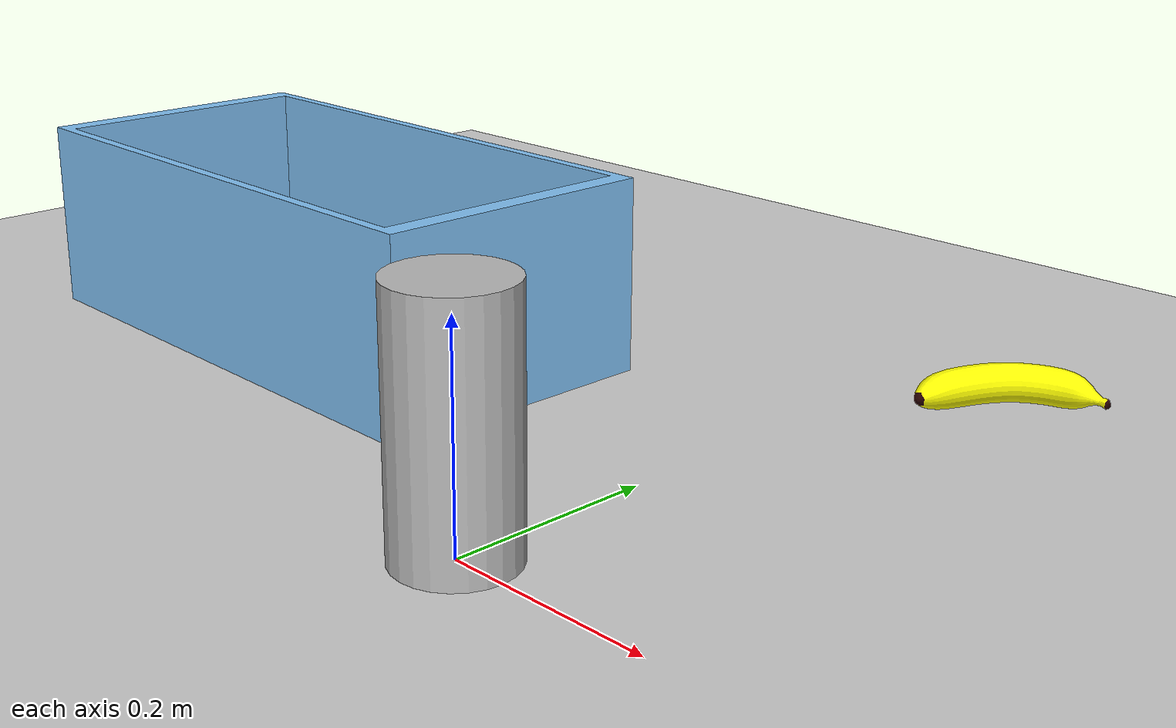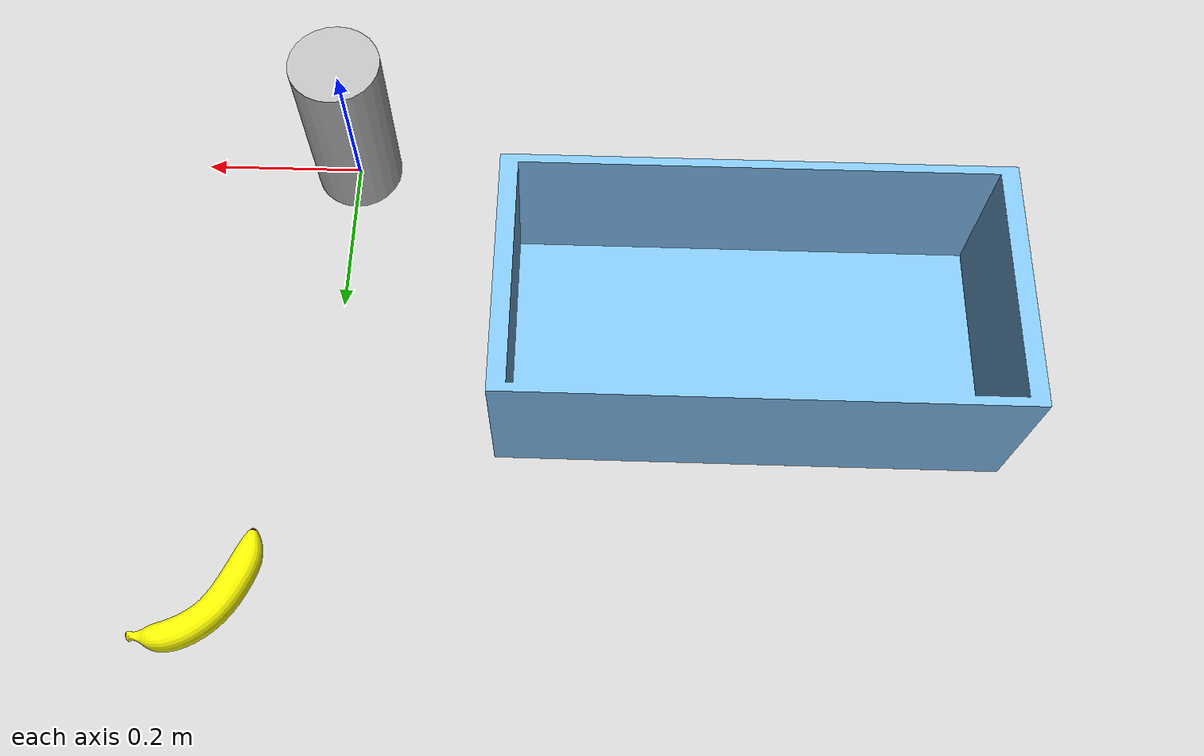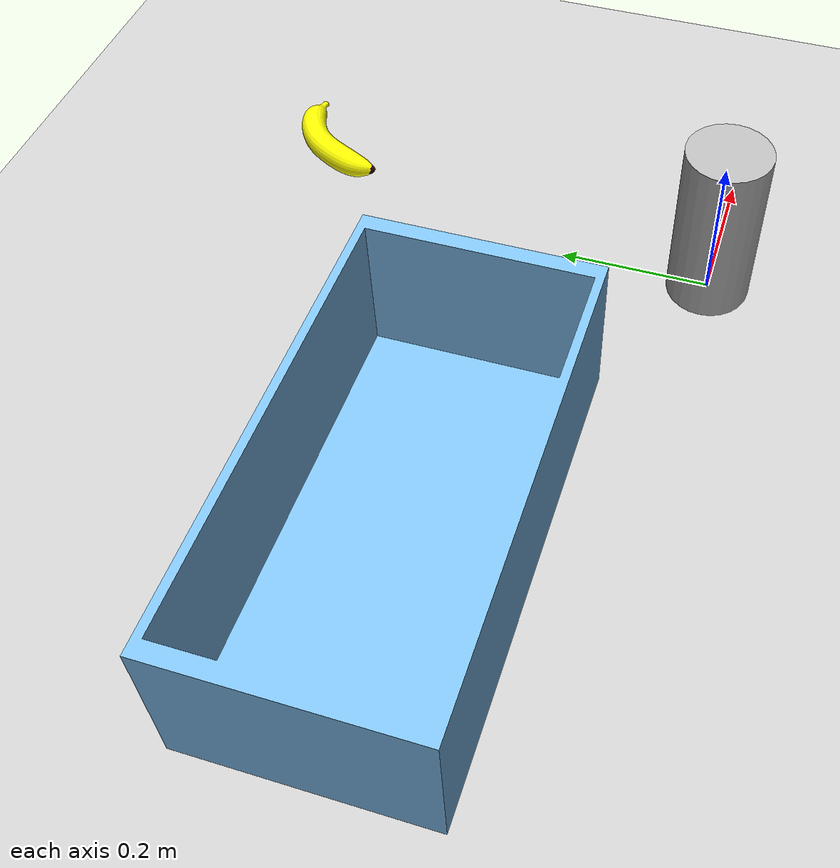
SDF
<sdf version="1.6">
 <world name="default">
  <light name="sun" type="directional">
   <pose>0 0 10 0 -0 0</pose>
   <diffuse>0.8 0.8 0.8 1</diffuse>
   <specular>0.2 0.2 0.2 1</specular>
   <attenuation>
    <range>1000</range>
    <constant>0.9</constant>
    <linear>0.01</linear>
    <quadratic>0.001</quadratic>
   </attenuation>
   <direction>-0.5 0.1 -0.9</direction>
  </light>
  <model name="ground_plane">
   <static>1</static>
   <link name="link">
    <collision name="collision">
     <geometry><plane><normal>0 0 1</normal><size>100 100</size></plane></geometry>
     <surface>
      <contact><collide_bitmask>65535</collide_bitmask></contact>
      <friction><ode><mu>100</mu><mu2>50</mu2></ode></friction>
     </surface>
    </collision>
    <visual name="visual">
     <cast_shadows>0</cast_shadows>
     <geometry><plane><normal>0 0 1</normal><size>100 100</size></plane></geometry>
     <material>
      <script><uri>file://media/materials/scripts/gazebo.material</uri><name>Gazebo/Grey</name></script>
     </material>
    </visual>
   </link>
  </model>
  <gravity>0 0 -9.8</gravity>
  <magnetic_field>6e-06 2.3e-05 -4.2e-05</magnetic_field>
  <atmosphere type="adiabatic"/>
  <physics name="default_physics" default="0" type="ode">
   <max_step_size>0.001</max_step_size>
   <real_time_factor>1</real_time_factor>
   <real_time_update_rate>1000</real_time_update_rate>
  </physics>
  <scene><ambient>0.4 0.4 0.4 1</ambient><background>0.7 0.7 0.7 1</background><shadows>1</shadows></scene>
  <audio><device>default</device></audio>
  <spherical_coordinates>
   <surface_model>EARTH_WGS84</surface_model>
   <latitude_deg>0</latitude_deg>
   <longitude_deg>0</longitude_deg>
   <elevation>0</elevation>
   <heading_deg>0</heading_deg>
  </spherical_coordinates>
  <model name="banana">
   <link name="banana_link">
    <inertial>
     <pose>0.008419 0.000166 0.084099 0 -0 0</pose>
     <mass>0.01</mass>
     <inertia>
      <ixx>3.5873e-05</ixx>
      <ixy>1.5e-08</ixy>
      <ixz>-6.393e-06</ixz>
      <iyy>3.8443e-05</iyy>
      <iyz>1.5e-08</iyz>
      <izz>5.457e-06</izz>
     </inertia>
    </inertial>
    <collision name="banana_link_collision">
     <geometry>
      <mesh><scale>1 1 1</scale><uri>/home/lcz/tmp_ws/src/lcz_ur/lcz_ur_gazebo/urdf/meshes/banana.dae</uri></mesh>
     </geometry>
     <surface><friction><ode><mu>0.9</mu><mu2>0.9</mu2></ode></friction></surface>
    </collision>
    <visual name="banana_link_visual">
     <geometry>
      <mesh><scale>1 1 1</scale><uri>/home/lcz/tmp_ws/src/lcz_ur/lcz_ur_gazebo/urdf/meshes/banana.dae</uri></mesh>
     </geometry>
     <material><script><uri>__default__</uri><name>__default__</name></script></material>
    </visual>
   </link>
   <pose>0.04693 0.530635 0.019902 1.59138 -0.08514 2.23166</pose>
  </model>
  <model name="dropbox">
   <link name="dropbox_link">
    <inertial>
     <pose>0.008419 0.000166 0.084099 0 -0 0</pose>
     <mass>1</mass>
     <inertia>
      <ixx>0.035208</ixx>
      <ixy>0</ixy>
      <ixz>0</ixz>
      <iyy>0.018542</iyy>
      <iyz>0</iyz>
      <izz>0.043333</izz>
     </inertia>
    </inertial>
    <collision name="dropbox_link_collision">
     <geometry>
      <mesh><scale>1 1 1</scale><uri>/home/lcz/tmp_ws/src/lcz_ur/lcz_ur_gazebo/urdf/meshes/dropbox.dae</uri></mesh>
     </geometry>
     <surface><friction><ode><mu>0.9</mu><mu2>0.9</mu2></ode></friction></surface>
    </collision>
    <visual name="dropbox_link_visual">
     <geometry>
      <mesh><scale>1 1 1</scale><uri>/home/lcz/tmp_ws/src/lcz_ur/lcz_ur_gazebo/urdf/meshes/dropbox.dae</uri></mesh>
     </geometry>
     <material>
      <script><name>Gazebo/SkyBlue</name><uri>file://media/materials/scripts/gazebo.material</uri></script>
     </material>
    </visual>
   </link>
   <pose>-0.5 0.25 -5e-06 -0 2.4e-05 1.57</pose>
  </model>
  <model name="beer">
   <link name="link">
    <pose>0 0 0.115 0 -0 0</pose>
    <inertial>
     <mass>0.39</mass>
     <inertia><ixx>0.00058</ixx><ixy>0</ixy><ixz>0</ixz><iyy>0.00058</iyy><iyz>0</iyz><izz>0.00019</izz></inertia>
    </inertial>
    <collision name="collision">
     <geometry><cylinder><radius>0.055</radius><length>0.23</length></cylinder></geometry>
    </collision>
    <visual name="visual">
     <geometry><cylinder><radius>0.055</radius><length>0.23</length></cylinder></geometry>
     <material>
      <script>
       <uri>model://beer/materials/scripts</uri>
       <uri>model://beer/materials/textures</uri>
       <name>Beer/Diffuse</name>
      </script>
     </material>
    </visual>
   </link>
   <pose>-0 -0 -8e-06 -1e-06 -0 -4e-06</pose>
  </model>
 </world>
</sdf>
